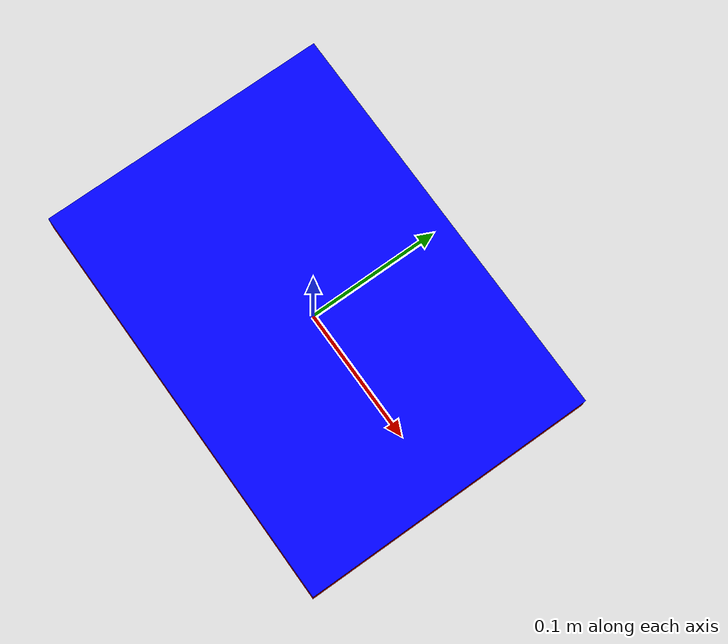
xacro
<?xml version="1.0"?>
<robot xmlns:xacro="http://www.ros.org/wiki/xacro" name="thinkpad_x13_gen1_laptop">

  <xacro:property name="base_length" value="0.305"/>
  <xacro:property name="base_width" value="0.217"/>
  <xacro:property name="base_thickness" value="0.015"/>
  <xacro:property name="base_mass" value="1.05"/>

  <xacro:property name="lid_length" value="0.305"/>
  <xacro:property name="lid_width" value="0.217"/>
  <xacro:property name="lid_thickness" value="0.006"/>
  <xacro:property name="lid_mass" value="0.55"/>

  <xacro:property name="hinge_x" value="0.0"/>
  <xacro:property name="hinge_y" value="-0.1085"/>
  <xacro:property name="hinge_z" value="${base_thickness}"/>

  <material name="base_red">
    <color rgba="1 0 0 1"/>
  </material>

  <material name="lid_blue">
    <color rgba="0 0 1 1"/>
  </material>

  <!-- Dummy link for inertia -->
  <link name="laptop_world"/>

  <!-- Base -->
  <link name="laptop_base_link">
    <inertial>
      <origin xyz="0 0 ${base_thickness / 2.0}" rpy="0 0 0"/>
      <mass value="${base_mass}"/>
      <inertia
        ixx="${(base_mass / 12.0) * (base_width * base_width + base_thickness * base_thickness)}"
        ixy="0.0"
        ixz="0.0"
        iyy="${(base_mass / 12.0) * (base_length * base_length + base_thickness * base_thickness)}"
        iyz="0.0"
        izz="${(base_mass / 12.0) * (base_length * base_length + base_width * base_width)}"/>
    </inertial>
    <visual>
      <origin xyz="0 0 ${base_thickness / 2.0}" rpy="0 0 0"/>
      <geometry>
        <box size="${base_length} ${base_width} ${base_thickness}"/>
      </geometry>
      <material name="base_red"/>
    </visual>
    <collision>
      <origin xyz="0 0 ${base_thickness / 2.0}" rpy="0 0 0"/>
      <geometry>
        <box size="${base_length} ${base_width} ${base_thickness}"/>
      </geometry>
    </collision>
  </link>

  <!-- Dummy joint to link inertia -->
  <joint name="laptop_world_to_base" type="fixed">
    <parent link="laptop_world"/>
    <child link="laptop_base_link"/>
    <origin xyz="0 0 0" rpy="0 0 0"/>
  </joint>

  <!-- Lid/Screen -->
  <link name="lid_link">
    <inertial>
      <origin xyz="0 ${lid_width / 2.0} ${lid_thickness / 2.0}" rpy="0 0 0"/>
      <mass value="${lid_mass}"/>
      <inertia
        ixx="${(lid_mass / 12.0) * (lid_width * lid_width + lid_thickness * lid_thickness)}"
        ixy="0.0"
        ixz="0.0"
        iyy="${(lid_mass / 12.0) * (lid_length * lid_length + lid_thickness * lid_thickness)}"
        iyz="0.0"
        izz="${(lid_mass / 12.0) * (lid_length * lid_length + lid_width * lid_width)}"/>
    </inertial>
    <visual>
      <origin xyz="0 ${lid_width/ 2.0} ${lid_thickness / 2.0}" rpy="0 0 0"/>
      <geometry>
        <box size="${lid_length} ${lid_width} ${lid_thickness}"/>
      </geometry>
      <material name="lid_blue"/>
    </visual>
    <collision>
      <origin xyz="0 ${lid_width / 2.0} ${lid_thickness / 2.0}" rpy="0 0 0"/>
      <geometry>
        <box size="${lid_length} ${lid_width} ${lid_thickness}"/>
      </geometry>
    </collision>
  </link>

  <!-- Hinge Joint -->
  <joint name="hinge_joint" type="revolute">
    <parent link="laptop_base_link"/>
    <child link="lid_link"/>
    <origin xyz="${hinge_x} ${hinge_y} ${hinge_z}" rpy="0 0 0"/>
    <axis xyz="1 0 0"/>
    <limit lower="0.0" upper="3.1416" effort="1.0" velocity="1.0"/>
  </joint>

    <!-- Reference frames -->

    <!-- Base tag centered on top plane of base -->
     <!-- might need [1.5708, 3.1416, 1.5708] -->
  <link name="tag_laptop_base"/>
  <joint name="base_to_base_tag" type="fixed">
    <parent link="laptop_base_link"/>
    <child link="tag_laptop_base"/>
    <origin xyz="0 0 ${base_thickness}" rpy="0 0 0"/>
  </joint>

  <!-- Lid outer tag centered on outside plane -->
  <link name="tag_laptop_lid_inner"/>
  <joint name="lid_to_inner_tag" type="fixed">
    <parent link="lid_link"/>
    <child link="tag_laptop_lid_inner"/>
    <origin xyz="${lid_length} ${lid_width / 2.0} -${lid_thickness}" rpy="0 0 0"/>
  </joint>

  <!-- Lid inner tag centered on inside plane -->
  <link name="tag_laptop_lid_outer"/>
  <joint name="lid_to_outer_tag" type="fixed">
    <parent link="lid_link"/>
    <child link="tag_laptop_lid_outer"/>
    <origin xyz="${lid_length} ${lid_width / 2.0} ${lid_thickness}" rpy="3.14159265359 3.14159265359 0"/>
  </joint>

</robot>
